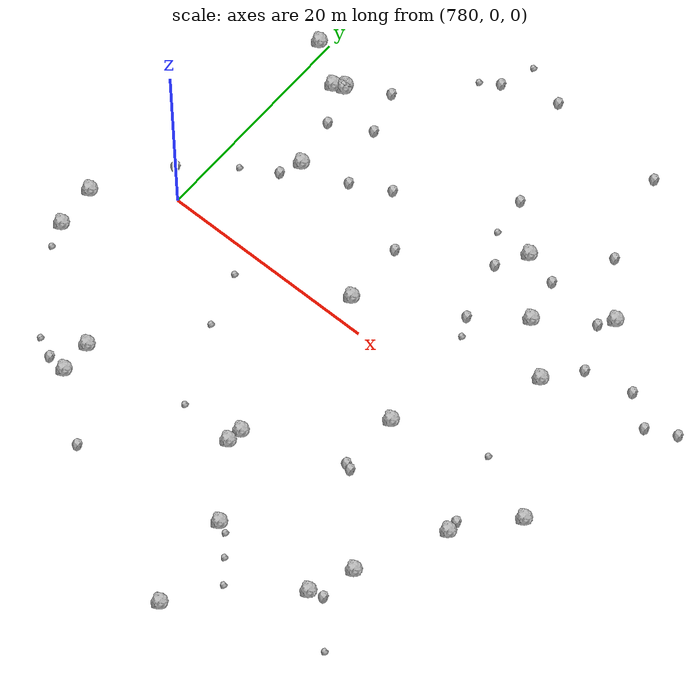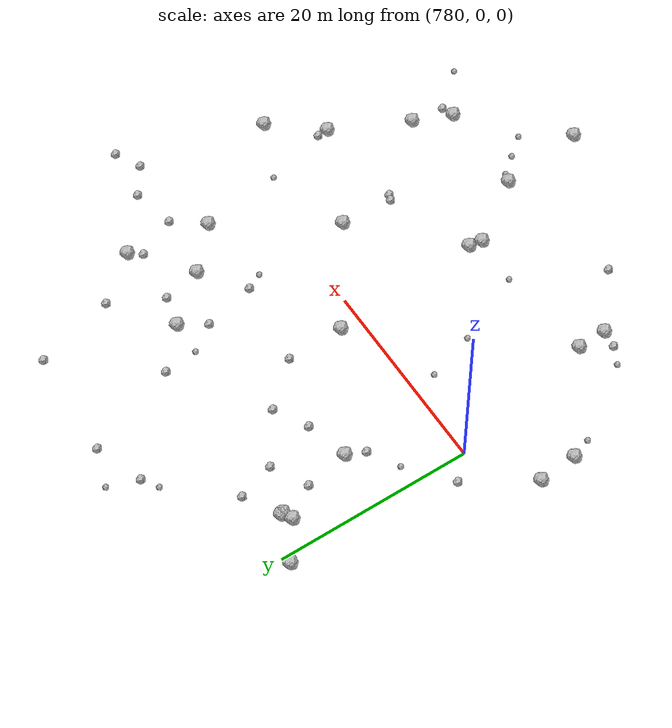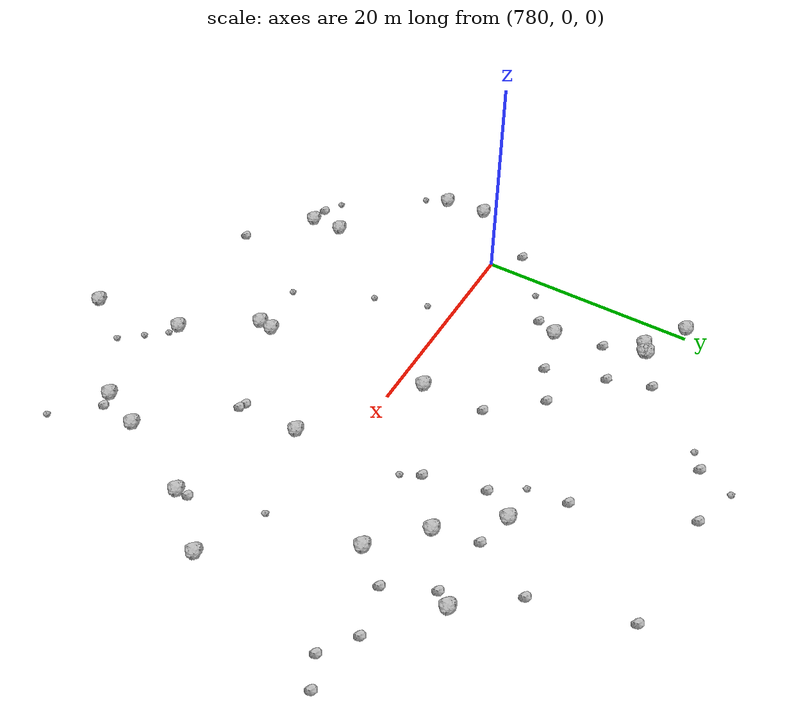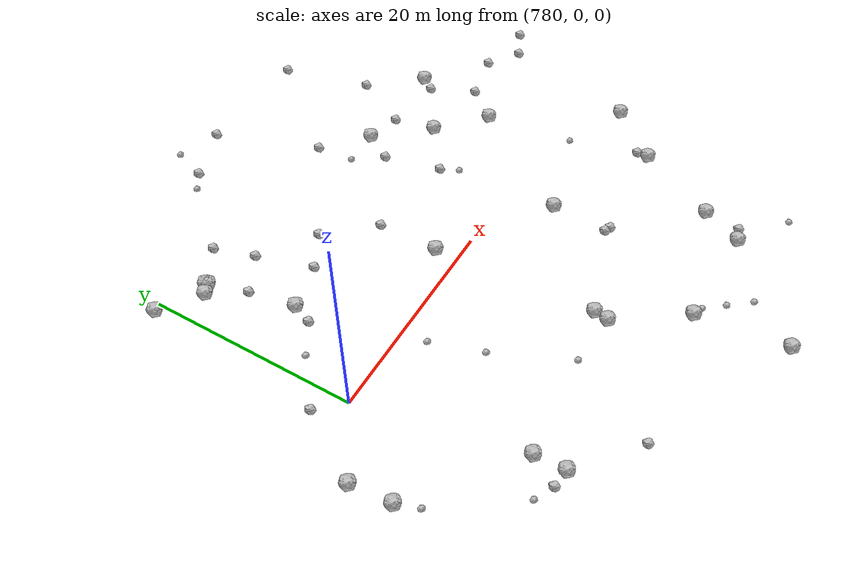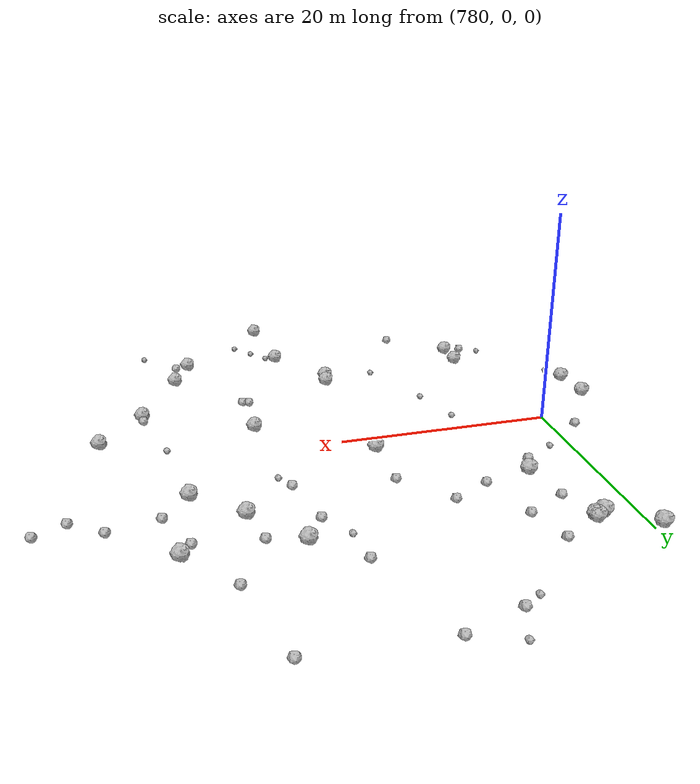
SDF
<sdf version="1.6">
 <world name="default">
  <include><uri>model://sun</uri></include>
  <model name="rock1_20_4">
   <include><uri>model://rock1</uri><pose>807.4178389717847 -4.610474339110674 0.5 0 0 0</pose></include>
  </model>
  <model name="rock1_20_5">
   <include><uri>model://rock1</uri><pose>779.1784487925846 19.6469336408867 0.5 0 0 0</pose></include>
  </model>
  <model name="rock1_20_6">
   <include><uri>model://rock1</uri><pose>782.8716220763705 17.049652921638113 0.5 0 0 0</pose></include>
  </model>
  <model name="rock1_20_7">
   <include><uri>model://rock1</uri><pose>817.5583706503736 -9.459321955145526 0.5 0 0 0</pose></include>
  </model>
  <model name="rock1_20_8">
   <include><uri>model://rock1</uri><pose>802.6293160053741 -20.875605203662904 0.5 0 0 0</pose></include>
  </model>
  <model name="rock1_20_9">
   <include><uri>model://rock1</uri><pose>783.7808538403305 17.66324079640666 0.5 0 0 0</pose></include>
  </model>
  <model name="rock1_20_10">
   <include><uri>model://rock1</uri><pose>783.4021792195948 -15.47432939152994 0.5 0 0 0</pose></include>
  </model>
  <model name="rock1_20_11">
   <include><uri>model://rock1</uri><pose>812.2645764258297 -20.943293447594808 0.5 0 0 0</pose></include>
  </model>
  <model name="rock1_20_12">
   <include><uri>model://rock1</uri><pose>783.4922382339155 -18.477670264238988 0.5 0 0 0</pose></include>
  </model>
  <model name="rock1_20_13">
   <include><uri>model://rock1</uri><pose>773.7129329172959 -4.157020579670444 0.5 0 0 0</pose></include>
  </model>
  <model name="rock1_20_14">
   <include><uri>model://rock1</uri><pose>814.4771422015205 6.366485504818911 0.5 0 0 0</pose></include>
  </model>
  <model name="rock1_20_15">
   <include><uri>model://rock1</uri><pose>815.841963304598 14.680464242843357 0.5 0 0 0</pose></include>
  </model>
  <model name="rock1_20_16">
   <include><uri>model://rock1</uri><pose>803.6507512826897 -29.49330842302808 0.5 0 0 0</pose></include>
  </model>
  <model name="rock1_20_17">
   <include><uri>model://rock1</uri><pose>783.8221556766241 17.462078736504232 0.5 0 0 0</pose></include>
  </model>
  <model name="rock1_20_18">
   <include><uri>model://rock1</uri><pose>806.3153024407526 14.948799521396317 0.5 0 0 0</pose></include>
  </model>
  <model name="rock1_20_19">
   <include><uri>model://rock1</uri><pose>813.8839676710767 -17.116103307499763 0.5 0 0 0</pose></include>
  </model>
  <model name="rock1_20_20">
   <include><uri>model://rock1</uri><pose>798.5144713767542 -13.343060462777526 0.5 0 0 0</pose></include>
  </model>
  <model name="rock1_20_21">
   <include><uri>model://rock1</uri><pose>821.5961463614359 -4.581124287485672 0.5 0 0 0</pose></include>
  </model>
  <model name="rock1_20_22">
   <include><uri>model://rock1</uri><pose>797.4379024370455 2.1845959033802913 0.5 0 0 0</pose></include>
  </model>
  <model name="rock1_20_23">
   <include><uri>model://rock1</uri><pose>785.8063070105151 9.413155722797796 0.5 0 0 0</pose></include>
  </model>
  <model name="rock1_20_24">
   <include><uri>model://rock1</uri><pose>798.3016567058305 -14.713588225871764 0.5 0 0 0</pose></include>
  </model>
  <model name="rock1_20_25">
   <include><uri>model://rock1</uri><pose>774.0505842266793 -8.145136517070569 0.5 0 0 0</pose></include>
  </model>
  <model name="rock1_20_26">
   <include><uri>model://rock1</uri><pose>810.3353953082313 10.235892416064019 0.5 0 0 0</pose></include>
  </model>
  <model name="rock2_20_0">
   <include><uri>model://rock2</uri><pose>781.7097009789782 -18.280976940297325 0.3 0 0 0</pose></include>
  </model>
  <model name="rock2_20_1">
   <include><uri>model://rock2</uri><pose>821.1509721216775 10.300150029296454 0.3 0 0 0</pose></include>
  </model>
  <model name="rock2_20_2">
   <include><uri>model://rock2</uri><pose>788.9430536841678 -22.985051737229618 0.3 0 0 0</pose></include>
  </model>
  <model name="rock2_20_3">
   <include><uri>model://rock2</uri><pose>798.8681181708386 28.13172154650421 0.3 0 0 0</pose></include>
  </model>
  <model name="rock2_20_4">
   <include><uri>model://rock2</uri><pose>806.0194857021215 6.9781187847133594 0.3 0 0 0</pose></include>
  </model>
  <model name="rock2_20_5">
   <include><uri>model://rock2</uri><pose>807.1269132474556 -10.018441552308111 0.3 0 0 0</pose></include>
  </model>
  <model name="rock2_20_6">
   <include><uri>model://rock2</uri><pose>814.9222849096551 13.419767399541215 0.3 0 0 0</pose></include>
  </model>
  <model name="rock2_20_7">
   <include><uri>model://rock2</uri><pose>804.7135760539294 12.318622951467262 0.3 0 0 0</pose></include>
  </model>
  <model name="rock2_20_8">
   <include><uri>model://rock2</uri><pose>813.4963403381757 -20.53421241918528 0.3 0 0 0</pose></include>
  </model>
  <model name="rock2_20_9">
   <include><uri>model://rock2</uri><pose>784.9801162738463 7.536309614962107 0.3 0 0 0</pose></include>
  </model>
  <model name="rock2_20_10">
   <include><uri>model://rock2</uri><pose>812.0610401900543 19.309315142527858 0.3 0 0 0</pose></include>
  </model>
  <model name="rock2_20_11">
   <include><uri>model://rock2</uri><pose>816.8099982731945 9.357949687215523 0.3 0 0 0</pose></include>
  </model>
  <model name="rock2_20_12">
   <include><uri>model://rock2</uri><pose>802.4563036457129 18.51106225195518 0.3 0 0 0</pose></include>
  </model>
  <model name="rock2_20_13">
   <include><uri>model://rock2</uri><pose>809.4335581076011 14.134750004262017 0.3 0 0 0</pose></include>
  </model>
  <model name="rock2_20_14">
   <include><uri>model://rock2</uri><pose>777.7552178549785 2.3025704336912156 0.3 0 0 0</pose></include>
  </model>
  <model name="rock2_20_15">
   <include><uri>model://rock2</uri><pose>823.9790562438491 8.290697783647595 0.3 0 0 0</pose></include>
  </model>
  <model name="rock2_20_16">
   <include><uri>model://rock2</uri><pose>787.2938374979981 19.637242504389228 0.3 0 0 0</pose></include>
  </model>
  <model name="rock2_20_17">
   <include><uri>model://rock2</uri><pose>793.8932037557664 26.446689690224133 0.3 0 0 0</pose></include>
  </model>
  <model name="rock2_20_18">
   <include><uri>model://rock2</uri><pose>826.5384164326256 9.573188659764654 0.3 0 0 0</pose></include>
  </model>
  <model name="rock2_20_19">
   <include><uri>model://rock2</uri><pose>793.5034996804225 12.338588391878318 0.3 0 0 0</pose></include>
  </model>
  <model name="rock2_20_20">
   <include><uri>model://rock2</uri><pose>817.4855415007933 -8.345454432226681 0.3 0 0 0</pose></include>
  </model>
  <model name="rock2_20_21">
   <include><uri>model://rock2</uri><pose>788.5156362351729 15.820143305710324 0.3 0 0 0</pose></include>
  </model>
  <model name="rock2_20_22">
   <include><uri>model://rock2</uri><pose>809.8570368317376 27.46793863190628 0.3 0 0 0</pose></include>
  </model>
  <model name="rock2_20_23">
   <include><uri>model://rock2</uri><pose>790.1505766181132 10.52961772378982 0.3 0 0 0</pose></include>
  </model>
  <model name="rock2_20_24">
   <include><uri>model://rock2</uri><pose>797.3068222541452 8.046992778475762 0.3 0 0 0</pose></include>
  </model>
  <model name="rock2_20_25">
   <include><uri>model://rock2</uri><pose>784.9427348719519 13.922511462592027 0.3 0 0 0</pose></include>
  </model>
  <model name="rock2_20_26">
   <include><uri>model://rock2</uri><pose>807.7220702026066 -10.259824071616613 0.3 0 0 0</pose></include>
  </model>
  <model name="rock3_20_0">
   <include><uri>model://rock3</uri><pose>781.9775079874092 5.715689887032518 0.2 0 0 0</pose></include>
  </model>
  <model name="rock3_20_1">
   <include><uri>model://rock3</uri><pose>803.568800241523 -21.27822250403248 0.2 0 0 0</pose></include>
  </model>
  <model name="rock3_20_2">
   <include><uri>model://rock3</uri><pose>779.8953316714042 -17.44589265953692 0.2 0 0 0</pose></include>
  </model>
  <model name="rock3_20_3">
   <include><uri>model://rock3</uri><pose>790.0100617085681 -7.330196913742963 0.2 0 0 0</pose></include>
  </model>
  <model name="rock3_20_4">
   <include><uri>model://rock3</uri><pose>806.5391330245271 -24.943667168191546 0.2 0 0 0</pose></include>
  </model>
  <model name="rock3_20_5">
   <include><uri>model://rock3</uri><pose>804.9757390408612 -23.008745619210863 0.2 0 0 0</pose></include>
  </model>
  <model name="rock3_20_6">
   <include><uri>model://rock3</uri><pose>788.4181910359405 -2.436450799314162 0.2 0 0 0</pose></include>
  </model>
  <model name="rock3_20_7">
   <include><uri>model://rock3</uri><pose>794.9786865323083 29.49322167110285 0.2 0 0 0</pose></include>
  </model>
  <model name="rock3_20_8">
   <include><uri>model://rock3</uri><pose>815.6641327715517 -2.0063621670601393 0.2 0 0 0</pose></include>
  </model>
  <model name="rock3_20_9">
   <include><uri>model://rock3</uri><pose>816.697181655938 -24.210849980112904 0.2 0 0 0</pose></include>
  </model>
  <model name="rock3_20_10">
   <include><uri>model://rock3</uri><pose>802.8326660444075 14.95216852591144 0.2 0 0 0</pose></include>
  </model>
  <model name="rock3_20_11">
   <include><uri>model://rock3</uri><pose>806.8560118596783 5.277018209917401 0.2 0 0 0</pose></include>
  </model>
  <model name="rock3_20_12">
   <include><uri>model://rock3</uri><pose>793.2717982315335 -14.443476051782621 0.2 0 0 0</pose></include>
  </model>
  <model name="rock3_20_13">
   <include><uri>model://rock3</uri><pose>792.2861634445931 25.38313070357426 0.2 0 0 0</pose></include>
  </model>
  <model name="rock3_20_14">
   <include><uri>model://rock3</uri><pose>774.7972344645993 -10.285098190200422 0.2 0 0 0</pose></include>
  </model>
 </world>
</sdf>
